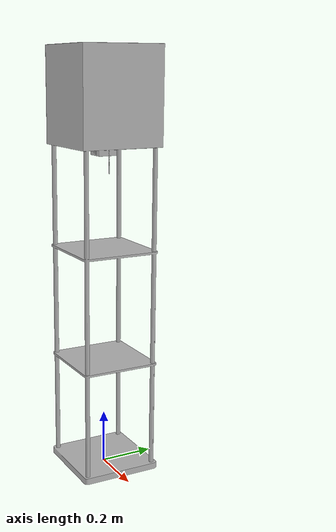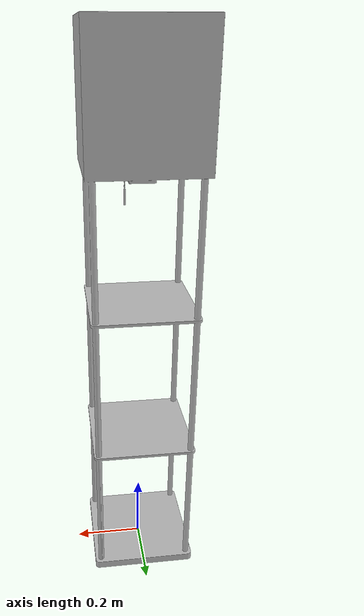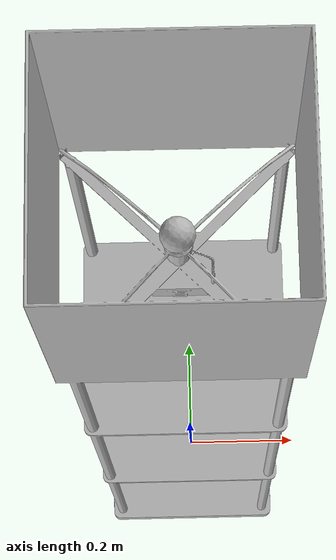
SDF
<sdf version="1.6">
	<model name="FloorLamps_Oc1b0ac823eb9_lod0">
		<link name="main_link">
			<visual name="visual_RootNode">
				<geometry>
					<mesh>
						<uri>model://FloorLamps_Oc1b0ac823eb9_lod0/meshes/visual_RootNode.dae</uri>
					</mesh>
				</geometry>
			</visual>
			<collision name="collision_RootNode_lod0_0">
				<geometry>
					<mesh>
						<uri>model://FloorLamps_Oc1b0ac823eb9_lod0/meshes/collision_RootNode_lod0_0.dae</uri>
					</mesh>
				</geometry>
			</collision>
		</link>
	</model>
</sdf>
